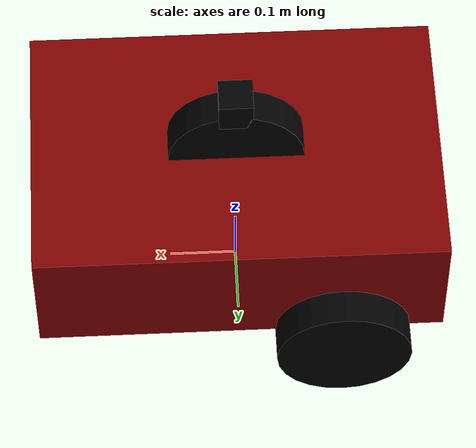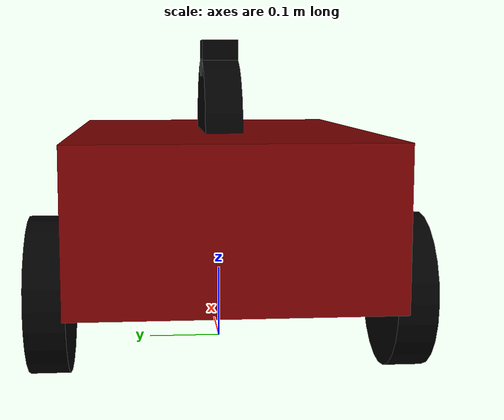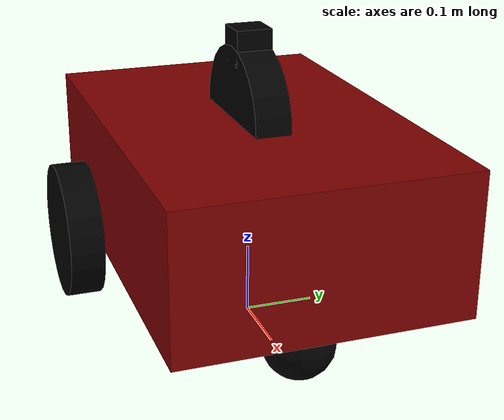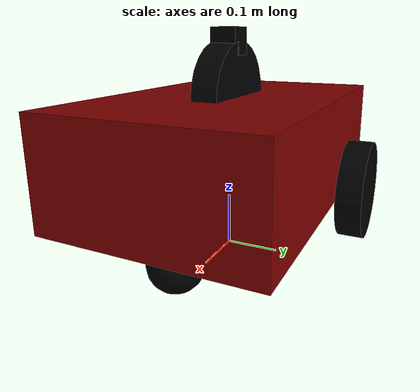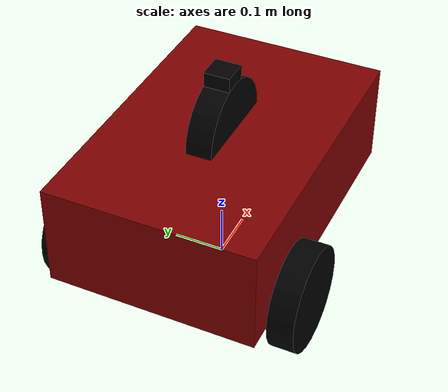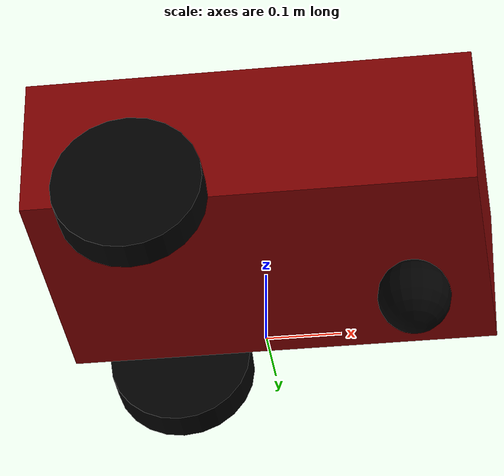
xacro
<?xml version="1.0"?>
<robot name="emiliobot" xmlns:xacro="http://www.ros.org/wiki/xacro">

    <xacro:include filename="common_properties.xacro" />
    <xacro:include filename="mobile_base_gazebo.xacro" />

    <xacro:property name="base_length" value="0.6" />
    <xacro:property name="base_width" value="0.4" />
    <xacro:property name="base_height" value="0.2" />
    <xacro:property name="wheel_radius" value="0.1" />
    <xacro:property name="wheel_length" value="0.05" />

    <material name="blue">
        <color rgba="0 0 0.5 1" />
    </material>

    <material name="grey">
        <color rgba="0.5 0.5 0.5 1" />
    </material>

    <material name="red">
        <color rgba="0.5 0 0 1" />
    </material>

    <material name="black">
        <color rgba="0 0 0 1" />
    </material>

    <link name="base_footprint" />

    <link name="base_link">
        <visual>
            <geometry>
                <box size="${base_length} ${base_width} ${base_height}" />
            </geometry>
            <origin xyz="0 0 ${base_height / 2.0}" rpy="0 0 0" />
            <material name="red" />
        </visual>
        <collision>
            <geometry>
                <box size="${base_length} ${base_width} ${base_height}" />
            </geometry>
            <origin xyz="0 0 ${base_height / 2.0}" rpy="0 0 0" />
        </collision>
        <xacro:box_inertia m="5.0" x="${base_length}" y="${base_width}" z="${base_height}" o_xyz="0 0 ${base_height / 2.0}" o_rpy="0 0 0" />
    </link>

    <joint name="base_joint" type="fixed">
        <parent link="base_footprint" />
        <child link="base_link" />
        <origin xyz="0 0 ${wheel_radius}" rpy="0 0 0" />
    </joint>

    <link name="right_wheel_link">
        <visual>
            <geometry>
                <cylinder radius="${wheel_radius}" length="${wheel_length}" />
            </geometry>
            <origin xyz="0 0 0" rpy="${pi / 2.0} 0 0" />
            <material name="black" />
        </visual>
        <collision>
            <geometry>
                <sphere radius="${wheel_radius}" />
            </geometry>
            <origin xyz="0 0 0" rpy="0 0 0" />
        </collision>
        <xacro:cylinder_inertia m="1.0" r="${wheel_radius}" l="${wheel_length}" o_xyz="0 0 0" o_rpy="${pi / 2.0} 0 0" />
    </link>

    <joint name="base_right_wheel_joint" type="continuous">
        <parent link="base_link" />
        <child link="right_wheel_link" />
        <origin xyz="${-base_length / 4.0} -0.225 0" rpy="0 0 0" />
        <axis xyz="0 1 0" />
    </joint>

    <link name="left_wheel_link">
        <visual>
            <geometry>
                <cylinder radius="${wheel_radius}" length="${wheel_length}" />
            </geometry>
            <origin xyz="0 0 0" rpy="${pi / 2.0} 0 0" />
            <material name="black" />
        </visual>
        <collision>
            <geometry>
                <sphere radius="${wheel_radius}" />
            </geometry>
            <origin xyz="0 0 0" rpy="0 0 0" />
        </collision>
        <xacro:cylinder_inertia m="1.0" r="${wheel_radius}" l="${wheel_length}" o_xyz="0 0 0" o_rpy="${pi / 2.0} 0 0" />
    </link>

    <joint name="base_left_wheel_joint" type="continuous">
        <parent link="base_link" />
        <child link="left_wheel_link" />
        <origin xyz="${-base_length / 4.0} 0.225 0" rpy="0 0 0" />
        <axis xyz="0 1 0" />
    </joint>

    <link name="top_wheel_link">
        <visual>
            <geometry>
                <cylinder radius="${wheel_radius}" length="${wheel_length}" />
            </geometry>
            <origin xyz="0 0 0" rpy="${pi / 2.0} 0 0" />
            <material name="black" />
        </visual>
        <collision>
            <geometry>
                <sphere radius="${wheel_radius}" />
            </geometry>
            <origin xyz="0 0 0" rpy="0 0 0" />
        </collision>
        <xacro:cylinder_inertia m="1.0" r="${wheel_radius}" l="${wheel_length}" o_xyz="0 0 0" o_rpy="${pi / 2.0} 0 0" />
    </link>

    <joint name="base_top_wheel_joint" type="continuous">
        <parent link="base_link" />
        <child link="top_wheel_link" />
        <origin xyz="0 0 ${base_height

        }" rpy="0 0 0" />
        <axis xyz="0 1 0" />
    </joint>

    <!-- Caster wheel link -->
    <link name="caster_wheel_link">
        <visual>
            <geometry>
                <sphere radius="${wheel_radius / 2.0}" />
            </geometry>
            <origin xyz="0 0 0" rpy="0 0 0" />
            <material name="black" />
        </visual>
        <collision>
            <geometry>
                <sphere radius="${wheel_radius / 2.0}" />
            </geometry>
            <origin xyz="0 0 0" rpy="0 0 0" />
        </collision>
        <inertial>
            <origin xyz="0 0 0" rpy="0 0 0" />
            <mass value="0.5" />
            <inertia
                ixx="0.001" ixy="0.0" ixz="0.0"
                iyy="0.001" iyz="0.0"
                izz="0.001" />
        </inertial>
    </link>

    <joint name="base_caster_wheel_joint" type="fixed">
        <parent link="base_link" />
        <child link="caster_wheel_link" />
        <origin xyz="${base_length / 3.0} 0 -0.05" rpy="0 0 0" />
    </joint>

    <!-- ==========================
         FPV CAMERA FOR EMILIOBOT
         ========================== -->

    <link name="camera_link">
        <visual>
            <geometry>
                <box size="0.05 0.05 0.05" />
            </geometry>
            <origin xyz="0 0 0" rpy="0 0 0" />
            <material name="black" />
        </visual>
        <collision>
            <geometry>
                <box size="0.05 0.05 0.05" />
            </geometry>
            <origin xyz="0 0 0" rpy="0 0 0" />
        </collision>
        <inertial>
            <origin xyz="0 0 0" rpy="0 0 0" />
            <mass value="0.1" />
            <inertia
                ixx="0.001" ixy="0.0" ixz="0.0"
                iyy="0.001" iyz="0.0"
                izz="0.001" />
        </inertial>
    </link>

    <joint name="camera_joint" type="fixed">
        <parent link="base_link" />
        <child link="camera_link" />
        <origin xyz="0 0 ${base_height + 0.1}" rpy="0 0 0" />
    </joint>

    <gazebo reference="camera_link">
        <sensor name="front_camera" type="camera">
            <always_on>1</always_on>
            <update_rate>30</update_rate>
            <visualize>true</visualize>

            <camera>
                <horizontal_fov>1.047</horizontal_fov>
                <image>
                    <width>640</width>
                    <height>480</height>
                    <format>R8G8B8</format>
                </image>
                <clip>
                    <near>0.1</near>
                    <far>100.0</far>
                </clip>
            </camera>
        </sensor>
    </gazebo>
</robot>
